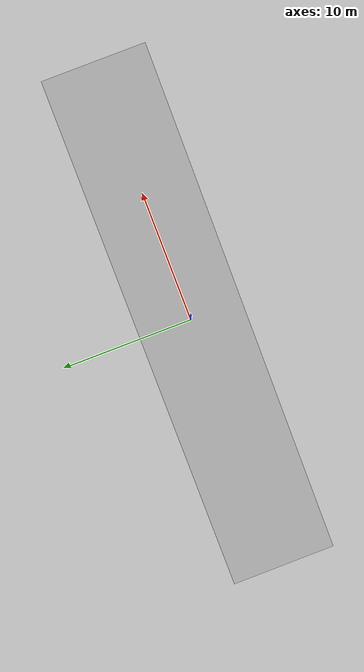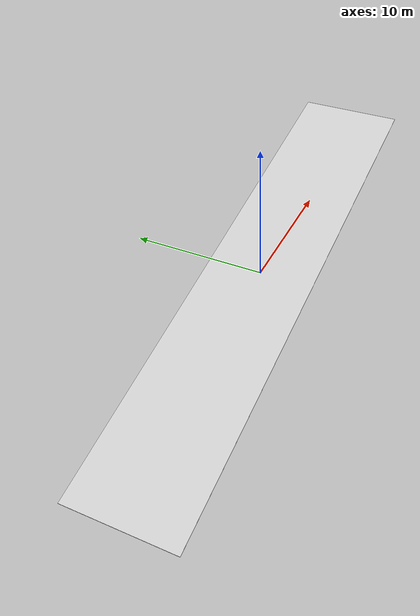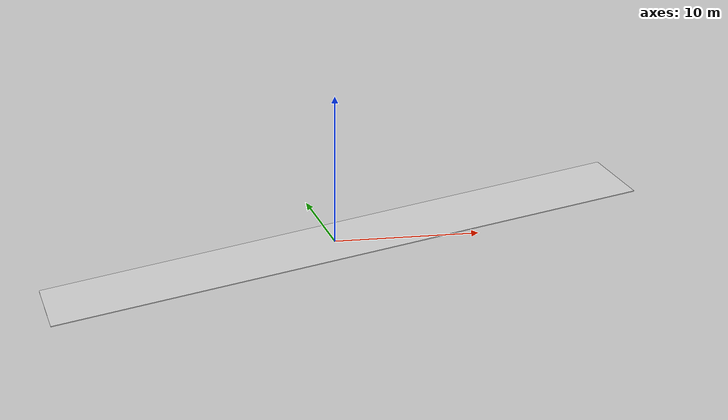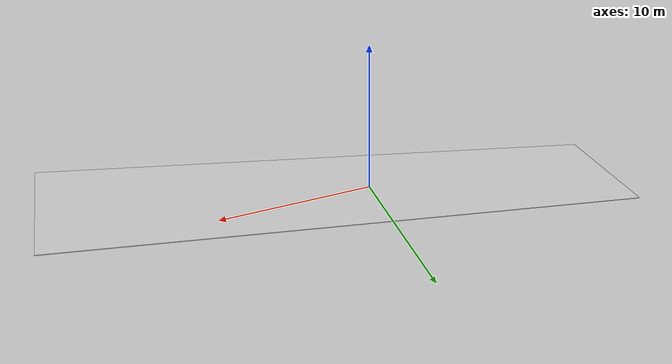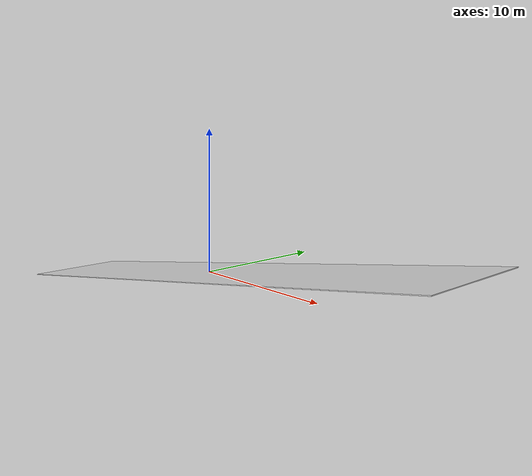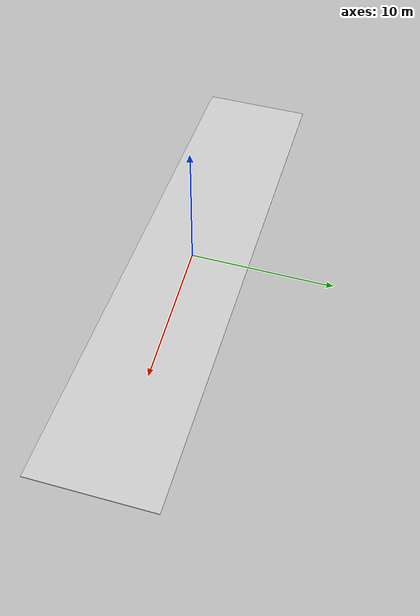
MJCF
<mujoco model="corridor_custom">
  <compiler angle="degree" autolimits="true"/>
  <option timestep="0.005" gravity="0 0 -9.81"/>
  <size njmax="4000" nconmax="1000"/>
  <asset>
    <material name="mat_floor" rgba="0.85 0.85 0.85 1"/>
    <material name="mat_bump"  rgba="0.25 0.6 0.9 1"/>
    <material name="mat_wall"  rgba="0.4 0.4 0.4 1"/>
  </asset>
  <worldbody>
    <geom name="test1" type="box" size="20 4 0.025" pos="0 0 0" euler="0 -10 0" material="mat_floor" friction="0.4"></geom>
  </worldbody>
</mujoco>
